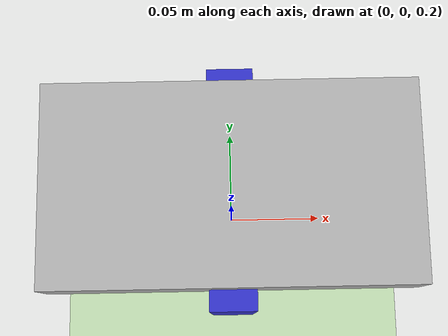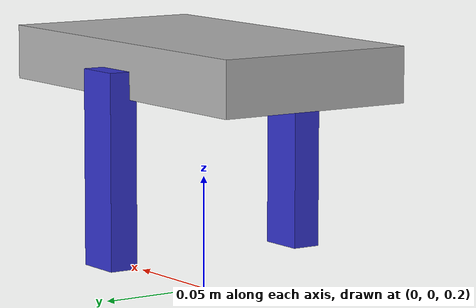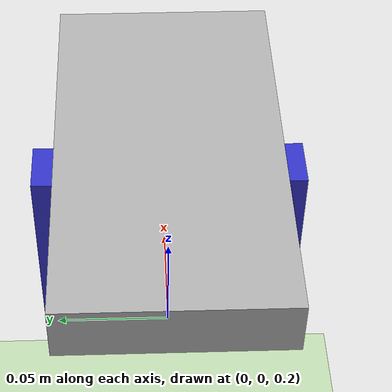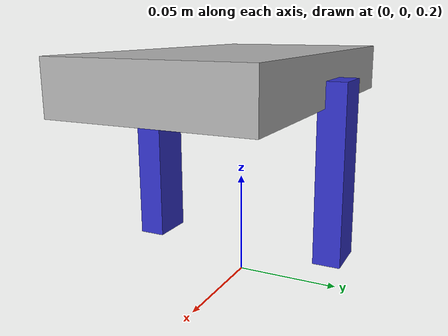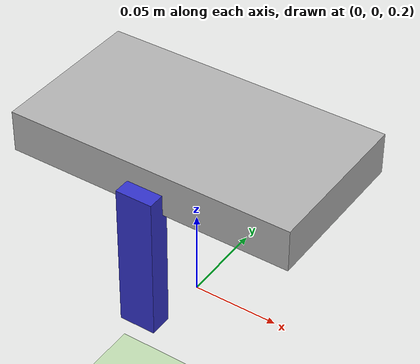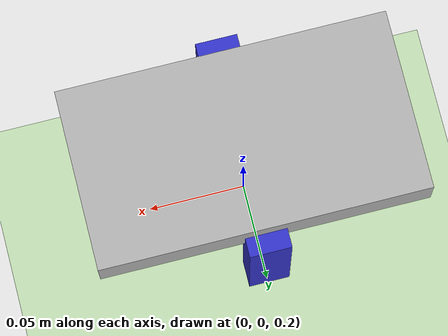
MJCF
<mujoco model="Growbot">
  <option gravity="0 0 -9.81" timestep="0.005" integrator="RK4" solver="CG" iterations="10" ls_iterations="10"/>

  <default>
    <geom friction="1.2 0.1 0.1" solref="0.005 1" solimp="0.99 0.99 0.01" condim="3"/>
    <joint damping="0.03" armature="0.002"/>
    <position kp="0.75" kv="0.05" ctrlrange="-1.57 1.57" forcerange="-1.5 1.5"/>
  </default>

  <worldbody>
    <light name="sun" pos="0 0 3" dir="0 0 -1" diffuse="0.8 0.8 0.8" specular="0.2 0.2 0.2" castshadow="true"/>
    <geom name="floor" type="plane" size="0 0 0.05" rgba="0.76 0.87 0.70 1"/>

    <body name="base_body" pos="0 0 0.3">
      <joint name="root_joint" type="free"/>
      <geom name="torso_geom" type="box" size="0.0825 0.045 0.012" mass="0.3" rgba="0.7 0.7 0.7 1"/>

      <body name="right_leg" pos="0 -0.048 0">
        <joint name="joint_1" type="hinge" axis="0 1 0" limited="true" range="-90 90" />
        <geom name="lower_leg_1" type="box" size="0.0105 0.0065 0.0425" pos="0 0 -0.0425" mass="0.03" rgba="0.2 0.2 0.8 1"/>
      </body>

      <body name="left_leg" pos="0 0.048 0">
        <joint name="joint_2" type="hinge" axis="0 1 0" limited="true" range="-90 90" />
        <geom name="lower_leg_2" type="box" size="0.0105 0.0065 0.0425" pos="0 0 -0.0425" mass="0.03" rgba="0.2 0.2 0.8 1"/>
      </body>
    </body>
  </worldbody>

  <actuator>
    <position name="servo_1" joint="joint_1"/>
    <position name="servo_2" joint="joint_2"/>
  </actuator>
</mujoco>
